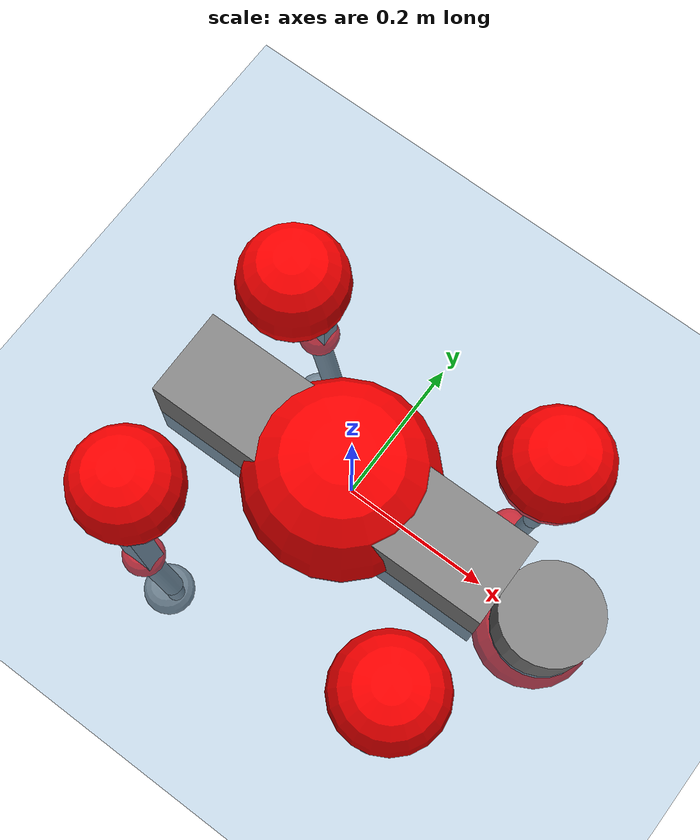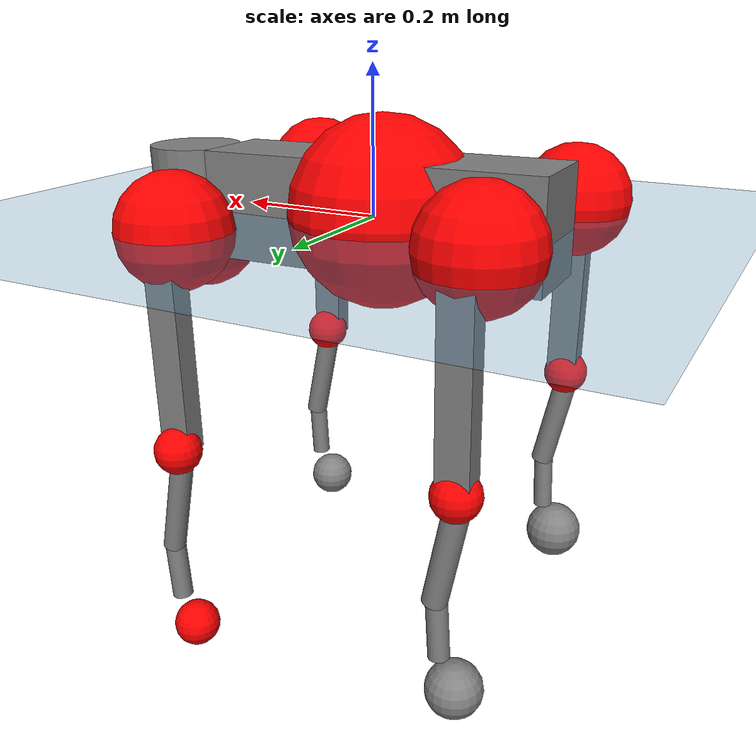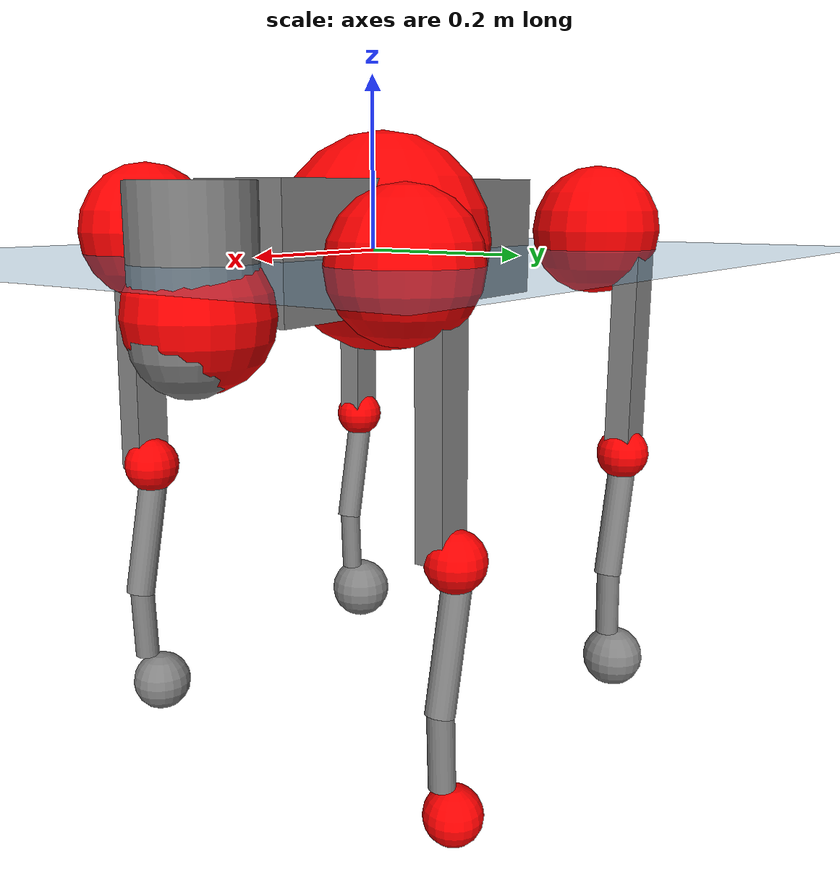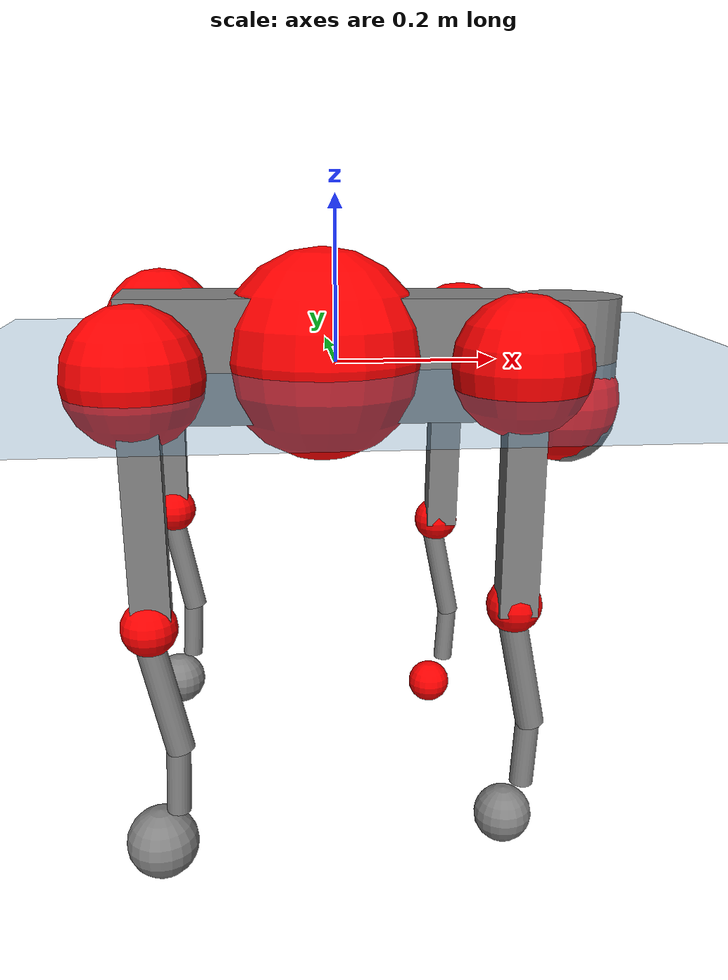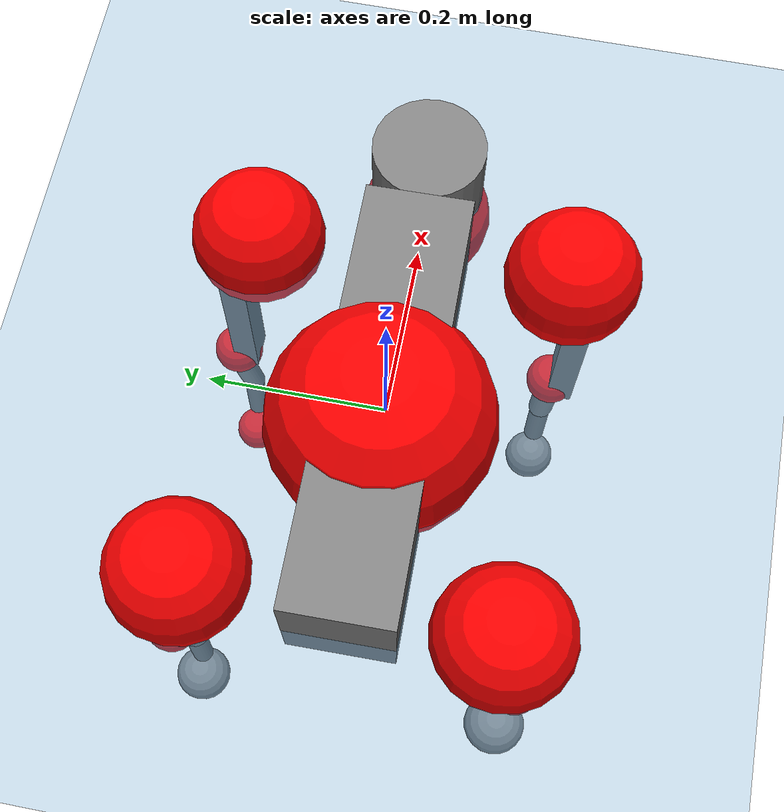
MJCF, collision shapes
<mujoco model="go2">
  <compiler angle="radian" assetdir="assets" balanceinertia="true" inertiafromgeom="false"/>

  <option timestep="0.005" density="1.2" viscosity="2e-05"/>

  <size nkey="1"/>

  <visual>
    <quality shadowsize="8192"/>
    <map shadowclip="0.5"/>
  </visual>

  <default>
    <default class="/">
      <geom contype="0" conaffinity="0" group="1" solref="-1000 -80"/>
      <site size="0.01 0.005 0.005" group="5"/>
      <general forcelimited="true" biastype="affine" gainprm="20" biasprm="0 -20 -0.5"/>
      <default class="go2">
        <joint armature="0.01" damping="0.01" frictionloss="0.2"/>
        <geom condim="1" margin="0.001"/>
        <default class="visual">
          <geom type="mesh" group="2"/>
        </default>
        <default class="collision">
          <geom group="3"/>
          <default class="foot">
            <geom size="0.022 0 0" condim="6" priority="1" friction="0.8 0.02 0.01" solimp="0.015 1 0.022"/>
          </default>
        </default>
        <default class="reward_collision_sphere">
          <geom group="5" rgba="1 0 0 1"/>
        </default>
      </default>
    </default>
  </default>

  <asset>
    <texture type="skybox" colorspace="auto" name="//unnamed_texture_0" builtin="gradient" rgb1="0.95 0.95 0.95" rgb2="0.95 0.95 0.95" width="100" height="600"/>
    <texture type="2d" colorspace="auto" name="texplane" builtin="checker" rgb1="0.345 0.575 0.748" rgb2="0.345 0.575 0.748" markrgb="1 1 1" width="512" height="512"/>
    <material name="MatPlane" class="/" texture="texplane" texuniform="true" texrepeat="2 2" specular="0.9"/>
    <material name="metal" class="/" rgba="0.9 0.95 0.95 1"/>
    <material name="black" class="/" rgba="0 0 0 1"/>
    <material name="white" class="/"/>
    <material name="gray" class="/" rgba="0.671705 0.692426 0.77427 1"/>
    <mesh name="base_0" class="/" file="base_0.obj"/>
    <mesh name="base_1" class="/" file="base_1.obj"/>
    <mesh name="base_2" class="/" file="base_2.obj"/>
    <mesh name="base_3" class="/" file="base_3.obj"/>
    <mesh name="base_4" class="/" file="base_4.obj"/>
    <mesh name="hip_0" class="/" file="hip_0.obj"/>
    <mesh name="hip_1" class="/" file="hip_1.obj"/>
    <mesh name="thigh_0" class="/" file="thigh_0.obj"/>
    <mesh name="thigh_1" class="/" file="thigh_1.obj"/>
    <mesh name="thigh_mirror_0" class="/" file="thigh_mirror_0.obj"/>
    <mesh name="thigh_mirror_1" class="/" file="thigh_mirror_1.obj"/>
    <mesh name="calf_0" class="/" file="calf_0.obj"/>
    <mesh name="calf_1" class="/" file="calf_1.obj"/>
    <mesh name="calf_mirror_0" class="/" file="calf_mirror_0.obj"/>
    <mesh name="calf_mirror_1" class="/" file="calf_mirror_1.obj"/>
    <mesh name="foot" class="/" file="foot.obj"/>
  </asset>

  <worldbody>
    <geom name="floor" class="/" size="100 100 0.125" type="plane" group="0" material="MatPlane"/>
    <light name="toplight_shadow" class="/" pos="0 0 5" dir="0.0990148 0.0990148 -0.990148" type="directional" ambient="0.04 0.04 0.04" diffuse="0.55 0.55 0.55" specular="0.12 0.12 0.12"/>
    <light name="toplight_fill" class="/" pos="0 0 5" dir="0.0990148 0.0990148 -0.990148" type="directional" castshadow="false" ambient="0.04 0.04 0.04" diffuse="0.3 0.3 0.3" specular="0.08 0.08 0.08"/>
    <body name="trunk" childclass="go2" pos="-0.0164356 0.00218488 0.0087336" quat="0.999972 -0.00254163 0.00454917 0.00537928">
      <inertial pos="0.0385297 -0.00841117 -0.00318333" quat="-0.00346968 0.707498 0.0182874 0.70647" mass="16.7995" diaginertia="0.140939 0.701119 0.0811575"/>
      <joint name="//unnamed_joint_0" type="free" armature="0" damping="0" frictionloss="0"/>
      <geom name="//unnamed_geom_1" class="visual" material="black" mesh="base_0"/>
      <geom name="//unnamed_geom_2" class="visual" material="black" mesh="base_1"/>
      <geom name="//unnamed_geom_3" class="visual" material="black" mesh="base_2"/>
      <geom name="//unnamed_geom_4" class="visual" material="white" mesh="base_3"/>
      <geom name="//unnamed_geom_5" class="visual" material="gray" mesh="base_4"/>
      <geom name="trunk_1" class="collision" size="0.245696 0.0610648 0.0744533" type="box"/>
      <geom name="trunk_2" class="collision" size="0.0653099 0.0587789" pos="0.307911 0 0.0132267" type="cylinder"/>
      <geom name="trunk_3" class="collision" size="0.0613913" pos="0.316554 0 -0.0793599"/>
      <geom name="//unnamed_geom_9" class="reward_collision_sphere" size="0.13062"/>
      <geom name="//unnamed_geom_10" class="reward_collision_sphere" size="0.0783719" pos="0.302509 0 -0.0595199"/>
      <site name="imu" pos="-0.0153684 -0.0482791 -0.0166887" size="0.013062"/>
      <camera name="track" pos="0 -3.03108 0" quat="0.707107 0.707107 0 0" mode="trackcom"/>
      <camera name="ego_camera" pos="0.337081 0 0.0595199" quat="-0.5 -0.5 0.5 0.5"/>
      <body name="FL_hip" pos="0.208448 0.0765151 -0.00794389" quat="0.999991 0.00081959 -0.00417049 0.000132844">
        <inertial pos="-0.010833 0.014913 0.00338432" quat="0.492379 0.490581 0.509052 0.507699" mass="1.5706" diaginertia="0.000967594 0.0039464 0.00192824"/>
        <joint name="FL_hip_joint" pos="0 0 0" axis="0.996721 0.0444505 0.0676112" stiffness="0.0370656" range="-1.36596 1.10829" armature="0.0136415" damping="0" frictionloss="0.268816"/>
        <geom name="//unnamed_geom_11" class="visual" material="metal" mesh="hip_0"/>
        <geom name="//unnamed_geom_12" class="visual" material="gray" mesh="hip_1"/>
        <geom name="//unnamed_geom_13" class="collision" size="0.0600851 0.026124" pos="0 0.121243 0" quat="0.707107 0.707107 0 0" type="cylinder"/>
        <geom name="//unnamed_geom_14" class="reward_collision_sphere" size="0.0783719" pos="0 0.106088 0"/>
        <body name="FL_thigh" pos="-0.00906122 0.142151 -0.00982539" quat="0.999977 0.00342537 0.00588327 0.000289856">
          <inertial pos="-0.0157827 -0.0229862 -0.0284449" quat="0.829267 0.0862674 -0.0180243 0.55186" mass="3.0223" diaginertia="0.00893522 0.0521631 0.00322728"/>
          <joint name="FL_thigh_joint" pos="0 0 0" axis="0.0333225 0.999406 -0.00876134" stiffness="0.0836003" range="-1.73921 3.49701" armature="0.0185676" damping="0.00561634" frictionloss="0.353072"/>
          <geom name="//unnamed_geom_15" class="visual" material="metal" mesh="thigh_0"/>
          <geom name="//unnamed_geom_16" class="visual" material="gray" mesh="thigh_1"/>
          <geom name="//unnamed_geom_17" class="collision" size="0.13911 0.0160009 0.0222054" pos="0 0 -0.140864" quat="0.707107 0 0.707107 0" type="box"/>
          <body name="FL_calf" pos="-0.0037657 0.0149295 -0.278764" quat="0.999986 -0.00395425 -0.00204522 -0.00289325">
            <inertial pos="0.019967 -0.000968342 -0.198243" quat="0.722825 0.0124295 -0.0361809 0.689971" mass="0.512937" diaginertia="0.00195411 0.00799327 0.000156539"/>
            <joint name="FL_calf_joint" pos="0 0 0" axis="0.0236051 0.999375 -0.0262987" range="-2.42674 -0.875401" armature="0.00747371" damping="0.0797451" frictionloss="0.13861"/>
            <geom name="//unnamed_geom_18" class="visual" material="gray" mesh="calf_0"/>
            <geom name="//unnamed_geom_19" class="visual" material="black" mesh="calf_1"/>
            <geom name="FL_calf0" class="collision" size="0.0156744 0.0783719" pos="0.00864311 0 -0.0793599" quat="0.994493 0 -0.104807 0" type="cylinder"/>
            <geom name="//unnamed_geom_21" class="collision" size="0.0143682 0.0424515" pos="0.0216078 0 -0.195754" quat="0.999688 0 0.0249974 0" type="cylinder"/>
            <geom name="//unnamed_geom_22" class="visual" pos="0 0 -0.281728" quat="1 0 0 0" material="black" mesh="foot"/>
            <geom name="FL_foot" class="foot" size="0.0219505" pos="-0.00216078 0 -0.281728"/>
            <geom name="//unnamed_geom_24" class="reward_collision_sphere" size="0.032655"/>
            <geom name="//unnamed_geom_25" class="reward_collision_sphere" size="0.032655" pos="-0.00216078 0 -0.281728"/>
            <site name="FL_foot" class="foot" pos="-0.00216078 0 -0.281728" size="0.013062"/>
          </body>
        </body>
      </body>
      <body name="FR_hip" pos="0.205524 -0.0766244 0.0150889" quat="0.99998 -0.000529246 -0.00598223 -0.00174399">
        <inertial pos="-0.015145 0.0111836 -0.000812969" quat="0.44742 0.54455 0.489614 0.513379" mass="1.51898" diaginertia="0.00168496 0.00536024 0.00247967"/>
        <joint name="FR_hip_joint" pos="0 0 0" axis="0.998872 -0.0301703 -0.0366671" stiffness="0.02752" range="-1.1853 1.06148" armature="0.00930812" damping="0" frictionloss="0.438694"/>
        <geom name="//unnamed_geom_26" class="visual" pos="0 1.68026e-09 7.20699e-08" quat="4.63268e-05 1 0 0" material="metal" mesh="hip_0"/>
        <geom name="//unnamed_geom_27" class="visual" pos="0 2.72391e-09 -1.78256e-07" quat="4.63268e-05 1 0 0" material="gray" mesh="hip_1"/>
        <geom name="//unnamed_geom_28" class="collision" size="0.0600851 0.026124" pos="0 -0.121243 0" quat="0.707107 0.707107 0 0" type="cylinder"/>
        <geom name="//unnamed_geom_29" class="reward_collision_sphere" size="0.0783719" pos="0 -0.106088 0"/>
        <body name="FR_thigh" pos="-0.000414147 -0.128511 -0.00231123" quat="1 0.000589845 -0.000207958 -7.02682e-05">
          <inertial pos="-0.0138297 0.0461673 -0.0405432" quat="0.578464 -0.0578438 0.103541 0.80704" mass="2.47472" diaginertia="0.0100514 0.0562366 0.00329339"/>
          <joint name="FR_thigh_joint" pos="0 0 0" axis="0.000971775 -0.999999 -0.000255067" stiffness="0.0500438" range="-3.42427 1.31144" armature="0.0123801" damping="0.0327669" frictionloss="0.152506"/>
          <geom name="//unnamed_geom_30" class="visual" material="metal" mesh="thigh_mirror_0"/>
          <geom name="//unnamed_geom_31" class="visual" material="gray" mesh="thigh_mirror_1"/>
          <geom name="//unnamed_geom_32" class="collision" size="0.13911 0.0160009 0.0222054" pos="0 0 -0.140864" quat="0.707107 0 0.707107 0" type="box"/>
          <body name="FR_calf" pos="0.00139512 0.01287 -0.275009" quat="1 0.000217327 2.76633e-06 -0.000485494">
            <inertial pos="0.00676041 -0.00104966 -0.187707" quat="0.71585 -0.0185197 -0.065868 0.694894" mass="0.55434" diaginertia="0.00219384 0.0118631 0.000249704"/>
            <joint name="FR_calf_joint" pos="0 0 0" axis="-0.0309241 -0.997006 -0.070877" stiffness="0.0691021" range="0.801263 2.48953" armature="0.0177347" damping="0" frictionloss="0.362834"/>
            <geom name="//unnamed_geom_33" class="visual" material="gray" mesh="calf_mirror_0"/>
            <geom name="//unnamed_geom_34" class="visual" material="black" mesh="calf_mirror_1"/>
            <geom name="FR_calf0" class="collision" size="0.0169806 0.0783719" pos="0.0108039 0 -0.0793599" quat="0.995004 0 -0.0998334 0" type="cylinder"/>
            <geom name="//unnamed_geom_36" class="collision" size="0.0143682 0.0424515" pos="0.0216078 0 -0.195754" quat="0.999688 0 0.0249974 0" type="cylinder"/>
            <geom name="//unnamed_geom_37" class="visual" pos="0 0 -0.281728" quat="1 0 0 0" material="black" mesh="foot"/>
            <geom name="FR_foot" class="foot" size="0.0354261" pos="-0.00216078 0 -0.281728"/>
            <geom name="//unnamed_geom_39" class="reward_collision_sphere" size="0.032655"/>
            <geom name="//unnamed_geom_40" class="reward_collision_sphere" size="0.032655" pos="-0.00216078 0 -0.281728"/>
            <site name="FR_foot" class="foot" pos="-0.00216078 0 -0.281728" size="0.013062"/>
          </body>
        </body>
      </body>
      <body name="RL_hip" pos="-0.208647 0.0705129 0.0121464" quat="1 -0.000267166 -0.000223561 -0.000482382">
        <inertial pos="-0.00160111 -0.012544 0.0119212" quat="0.562816 0.477839 0.440355 0.510877" mass="1.14803" diaginertia="0.00118199 0.00452945 0.00149019"/>
        <joint name="RL_hip_joint" pos="0 0 0" axis="-0.999995 -0.00303393 -0.000535042" range="-0.976664 1.25182" armature="0.0209867" damping="0.0345319" frictionloss="0.0744067"/>
        <geom name="//unnamed_geom_41" class="visual" pos="2.11062e-09 0 4.1373e-07" quat="4.63268e-05 0 1 0" material="metal" mesh="hip_0"/>
        <geom name="//unnamed_geom_42" class="visual" pos="3.42156e-09 0 3.66919e-07" quat="4.63268e-05 0 1 0" material="gray" mesh="hip_1"/>
        <geom name="//unnamed_geom_43" class="collision" size="0.0600851 0.026124" pos="0 0.121243 0" quat="0.707107 0.707107 0 0" type="cylinder"/>
        <geom name="//unnamed_geom_44" class="reward_collision_sphere" size="0.0783719" pos="0 0.106088 0"/>
        <body name="RL_thigh" pos="-0.000642425 0.158656 -0.0142572" quat="0.999999 -0.00131969 -0.000628419 -0.000871533">
          <inertial pos="-0.00308503 -0.0346023 -0.0473845" quat="0.814298 0.0670845 -0.0323329 0.57565" mass="1.91533" diaginertia="0.00795626 0.0410502 0.00284258"/>
          <joint name="RL_thigh_joint" pos="0 0 0" axis="0.0482246 0.998655 -0.0190168" range="-0.563079 4.49329" armature="0.00560789" damping="0.0620345" frictionloss="0.273171"/>
          <geom name="//unnamed_geom_45" class="visual" material="metal" mesh="thigh_0"/>
          <geom name="//unnamed_geom_46" class="visual" material="gray" mesh="thigh_1"/>
          <geom name="//unnamed_geom_47" class="collision" size="0.13911 0.0160009 0.0222054" pos="0 0 -0.140864" quat="0.707107 0 0.707107 0" type="box"/>
          <body name="RL_calf" pos="0.000134682 -0.000253733 -0.266684" quat="0.999997 -3.09136e-05 0.00127297 -0.00201025">
            <inertial pos="0.0138714 -0.0169417 -0.18922" quat="0.702353 -0.038927 -0.02621 0.71028" mass="0.490417" diaginertia="0.00224874 0.0104532 0.00023651"/>
            <joint name="RL_calf_joint" pos="0 0 0" axis="0.0019932 0.999788 -0.0204881" stiffness="0.0825753" range="-2.73825 -1.00604" armature="0.0071319" damping="0.0593156" frictionloss="0.0561056"/>
            <geom name="//unnamed_geom_48" class="visual" material="gray" mesh="calf_0"/>
            <geom name="//unnamed_geom_49" class="visual" material="black" mesh="calf_1"/>
            <geom name="RL_calf0" class="collision" size="0.0169806 0.0783719" pos="0.0108039 0 -0.0793599" quat="0.995004 0 -0.0998334 0" type="cylinder"/>
            <geom name="//unnamed_geom_51" class="collision" size="0.0143682 0.0424515" pos="0.0216078 0 -0.195754" quat="0.999688 0 0.0249974 0" type="cylinder"/>
            <geom name="//unnamed_geom_52" class="visual" pos="0 0 -0.281728" quat="1 0 0 0" material="black" mesh="foot"/>
            <geom name="RL_foot" class="foot" size="0.0385349" pos="-0.00216078 0 -0.281728"/>
            <geom name="//unnamed_geom_54" class="reward_collision_sphere" size="0.032655"/>
            <geom name="//unnamed_geom_55" class="reward_collision_sphere" size="0.032655" pos="-0.00216078 0 -0.281728"/>
            <site name="RL_foot" class="foot" pos="-0.00216078 0 -0.281728" size="0.013062"/>
          </body>
        </body>
      </body>
      <body name="RR_hip" pos="-0.215929 -0.0612266 0.0040541" quat="0.99997 0.00324991 -0.00625514 0.00316392">
        <inertial pos="-0.00995958 -0.0150373 0.0155565" quat="0.522509 0.482062 0.528028 0.46453" mass="1.53798" diaginertia="0.00132133 0.00487348 0.00201863"/>
        <joint name="RR_hip_joint" pos="0 0 0" axis="-0.996734 0.0784956 0.0189552" range="-1.18942 0.970278" armature="0.0192291" damping="0.0297691" frictionloss="0.202804"/>
        <geom name="//unnamed_geom_56" class="visual" pos="-2.09555e-09 1.68026e-09 3.4166e-07" quat="2.14617e-09 4.63268e-05 4.63268e-05 -1" material="metal" mesh="hip_0"/>
        <geom name="//unnamed_geom_57" class="visual" pos="-3.45883e-09 2.72391e-09 5.45176e-07" quat="2.14617e-09 4.63268e-05 4.63268e-05 -1" material="gray" mesh="hip_1"/>
        <geom name="//unnamed_geom_58" class="collision" size="0.0600851 0.026124" pos="0 -0.121243 0" quat="0.707107 0.707107 0 0" type="cylinder"/>
        <geom name="//unnamed_geom_59" class="reward_collision_sphere" size="0.0783719" pos="0 -0.106088 0"/>
        <body name="RR_thigh" pos="0.00570357 -0.142417 0.0158588" quat="1 -0.000238422 -1.32131e-05 -0.000251287">
          <inertial pos="-0.000704803 0.0337971 -0.0430064" quat="0.551753 -0.0197814 0.0830106 0.82963" mass="3.02236" diaginertia="0.00925268 0.0405042 0.00359339"/>
          <joint name="RR_thigh_joint" pos="0 0 0" axis="-0.00280858 -0.999737 -0.0227403" range="-4.51956 0.248657" armature="0.0149289" damping="0" frictionloss="0.201996"/>
          <geom name="//unnamed_geom_60" class="visual" material="metal" mesh="thigh_mirror_0"/>
          <geom name="//unnamed_geom_61" class="visual" material="gray" mesh="thigh_mirror_1"/>
          <geom name="//unnamed_geom_62" class="collision" size="0.13911 0.0160009 0.0222054" pos="0 0 -0.140864" quat="0.707107 0 0.707107 0" type="box"/>
          <body name="RR_calf" pos="-0.0037072 -0.00118215 -0.290629" quat="0.999999 0.000963388 -0.000377197 -0.000339198">
            <inertial pos="0.0187244 -0.002317 -0.186303" quat="0.709857 0.0400942 0.0165812 0.703008" mass="0.548777" diaginertia="0.00197525 0.0114754 0.000178485"/>
            <joint name="RR_calf_joint" pos="0 0 0" axis="-0.0690148 -0.997356 0.0227792" range="0.980703 2.72831" armature="0.0167915" damping="0" frictionloss="0.337103"/>
            <geom name="//unnamed_geom_63" class="visual" material="gray" mesh="calf_mirror_0"/>
            <geom name="//unnamed_geom_64" class="visual" material="black" mesh="calf_mirror_1"/>
            <geom name="RR_calf0" class="collision" size="0.0169806 0.0783719" pos="0.0108039 0 -0.0793599" quat="0.995004 0 -0.0998334 0" type="cylinder"/>
            <geom name="//unnamed_geom_66" class="collision" size="0.0143682 0.0424515" pos="0.0216078 0 -0.195754" quat="0.999688 0 0.0249974 0" type="cylinder"/>
            <geom name="//unnamed_geom_67" class="visual" pos="0 0 -0.281728" quat="1 0 0 0" material="black" mesh="foot"/>
            <geom name="RR_foot" class="foot" size="0.0434286" pos="-0.00216078 0 -0.281728"/>
            <geom name="//unnamed_geom_69" class="reward_collision_sphere" size="0.032655"/>
            <geom name="//unnamed_geom_70" class="reward_collision_sphere" size="0.032655" pos="-0.00216078 0 -0.281728"/>
            <site name="RR_foot" class="foot" pos="-0.00216078 0 -0.281728" size="0.013062"/>
          </body>
        </body>
      </body>
    </body>
  </worldbody>

  <contact>
    <pair class="/" geom1="floor" geom2="FL_foot" name="//unnamed_contact_0"/>
    <pair class="/" geom1="floor" geom2="FR_foot" name="//unnamed_contact_1"/>
    <pair class="/" geom1="floor" geom2="RL_foot" name="//unnamed_contact_2"/>
    <pair class="/" geom1="floor" geom2="RR_foot" name="//unnamed_contact_3"/>
  </contact>

  <actuator>
    <general name="FL_hip" class="/" joint="FL_hip_joint" forcerange="-29.9342 29.9342" gainprm="19.6184" biasprm="0 -19.6184 -0.839668"/>
    <general name="FL_thigh" class="/" joint="FL_thigh_joint" forcerange="-41.9554 41.9554" gainprm="19.6184" biasprm="0 -19.6184 -0.839668"/>
    <general name="FL_calf" class="/" joint="FL_calf_joint" forcerange="-66.81 66.81" gainprm="19.6184" biasprm="0 -19.6184 -0.839668"/>
    <general name="FR_hip" class="/" joint="FR_hip_joint" forcerange="-32.6976 32.6976" gainprm="19.6184" biasprm="0 -19.6184 -0.839668"/>
    <general name="FR_thigh" class="/" joint="FR_thigh_joint" forcerange="-20.0917 20.0917" gainprm="19.6184" biasprm="0 -19.6184 -0.839668"/>
    <general name="FR_calf" class="/" joint="FR_calf_joint" forcerange="-59.4639 59.4639" gainprm="19.6184" biasprm="0 -19.6184 -0.839668"/>
    <general name="RL_hip" class="/" joint="RL_hip_joint" forcerange="-13.0591 13.0591" gainprm="19.6184" biasprm="0 -19.6184 -0.839668"/>
    <general name="RL_thigh" class="/" joint="RL_thigh_joint" forcerange="-41.5015 41.5015" gainprm="19.6184" biasprm="0 -19.6184 -0.839668"/>
    <general name="RL_calf" class="/" joint="RL_calf_joint" forcerange="-93.6389 93.6389" gainprm="19.6184" biasprm="0 -19.6184 -0.839668"/>
    <general name="RR_hip" class="/" joint="RR_hip_joint" forcerange="-43.9229 43.9229" gainprm="19.6184" biasprm="0 -19.6184 -0.839668"/>
    <general name="RR_thigh" class="/" joint="RR_thigh_joint" forcerange="-13.5681 13.5681" gainprm="19.6184" biasprm="0 -19.6184 -0.839668"/>
    <general name="RR_calf" class="/" joint="RR_calf_joint" forcerange="-51.6146 51.6146" gainprm="19.6184" biasprm="0 -19.6184 -0.839668"/>
  </actuator>

  <sensor>
    <gyro site="imu" name="imu_angular_velocity"/>
    <velocimeter site="imu" name="imu_linear_velocity"/>
    <framelinvel objtype="site" objname="FL_foot" name="FL_foot_global_linear_velocity"/>
    <framelinvel objtype="site" objname="FR_foot" name="FR_foot_global_linear_velocity"/>
    <framelinvel objtype="site" objname="RL_foot" name="RL_foot_global_linear_velocity"/>
    <framelinvel objtype="site" objname="RR_foot" name="RR_foot_global_linear_velocity"/>
  </sensor>

  <keyframe>
    <key name="home" qpos="0 0 0.325 1 0 0 0 0.1 0.8 -1.5 -0.1 -0.8 1.5 -0.1 0.8 -1.5 0.1 -0.8 1.5"/>
  </keyframe>
</mujoco>
